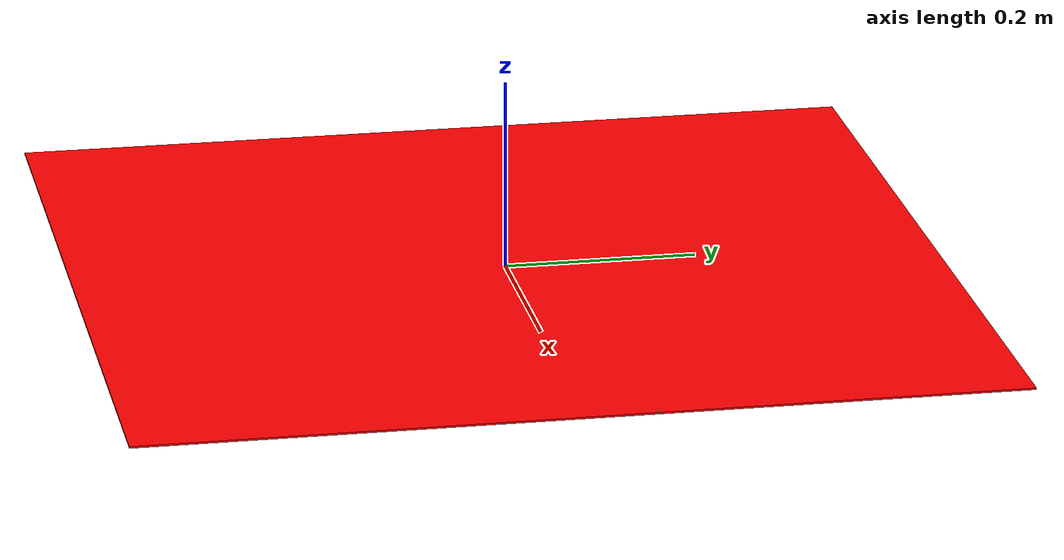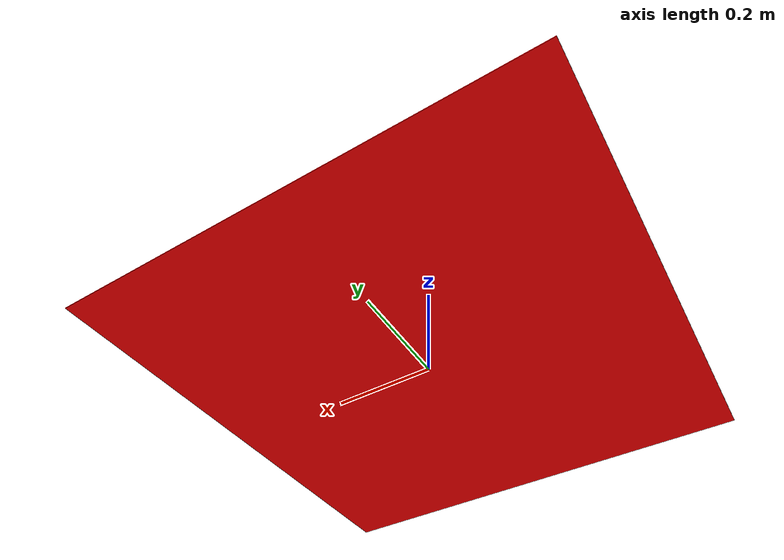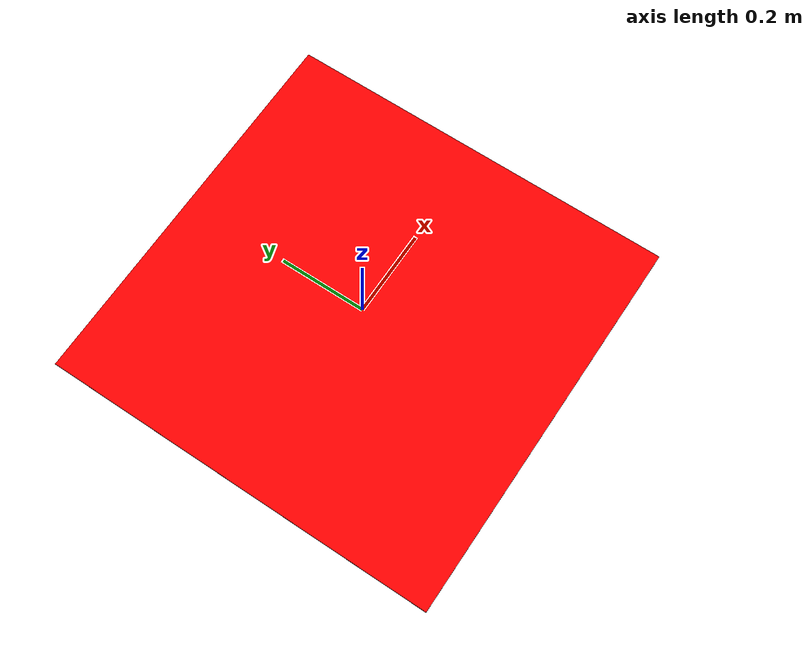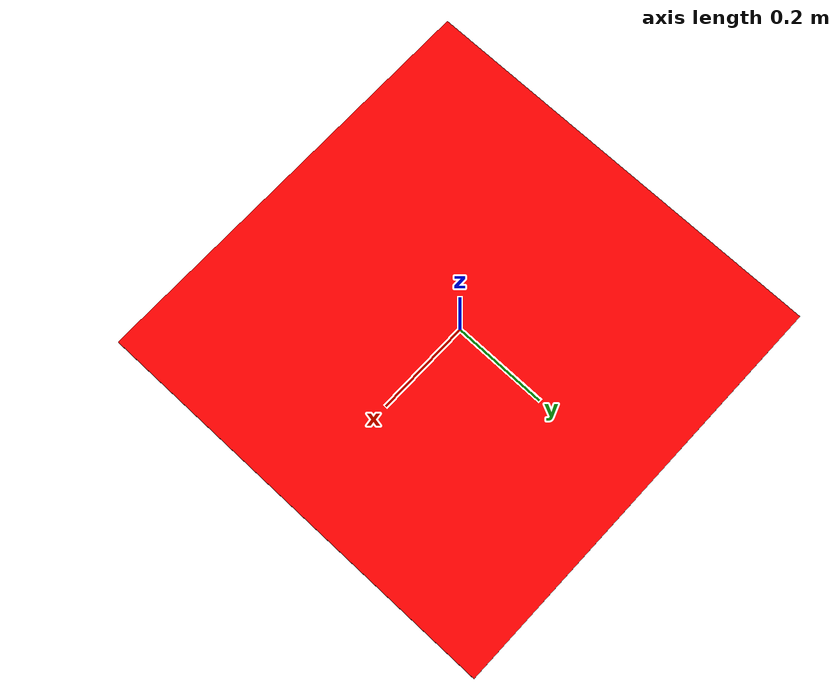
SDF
<?xml version="1.0" ?>
<sdf version="1.6">
    <model name="Kare">
        <static>true</static>
        <link name="link">
            <collision name="Kare_collision">
                <pose>0 0 0 0 0 0</pose>
                <geometry>
                    <cylinder>
                        <radius>0.05</radius>
                        <length>0.01</length>
                    </cylinder>
                </geometry>
            </collision>
            <visual name="Kare_visual">
                <geometry>
                    <mesh>
                        <uri>model://Kare/meshes/Kare.dae</uri>
                    <scale>10 10 2</scale>
                    </mesh>
                </geometry>
                <material>
                    <ambient>1 0 0 1</ambient>
                    <diffuse>1 0 0 1</diffuse>
                    <specular>0.1 0.1 0.1 1</specular>
                </material>
            </visual>
        </link>
    </model>
</sdf>
